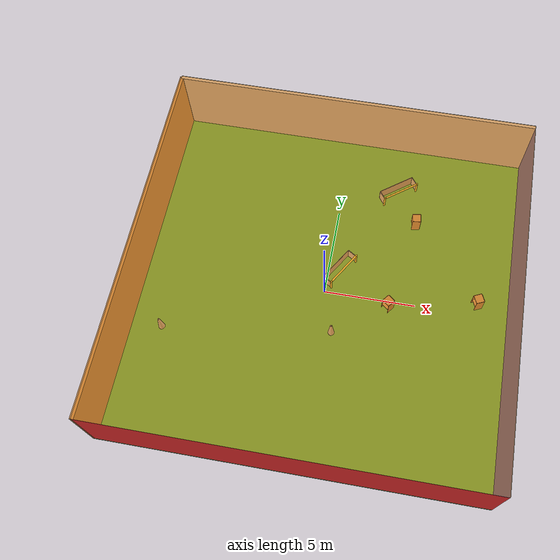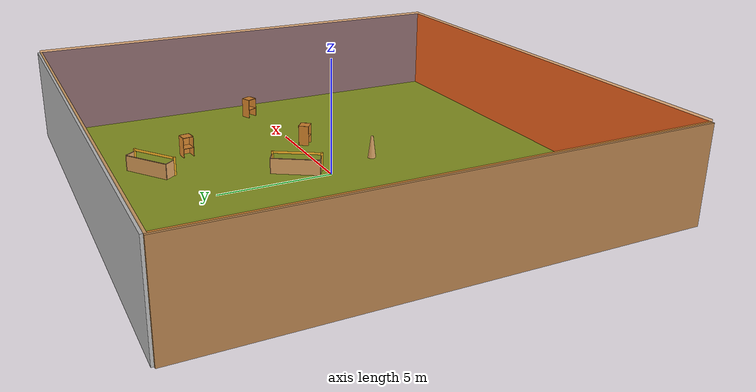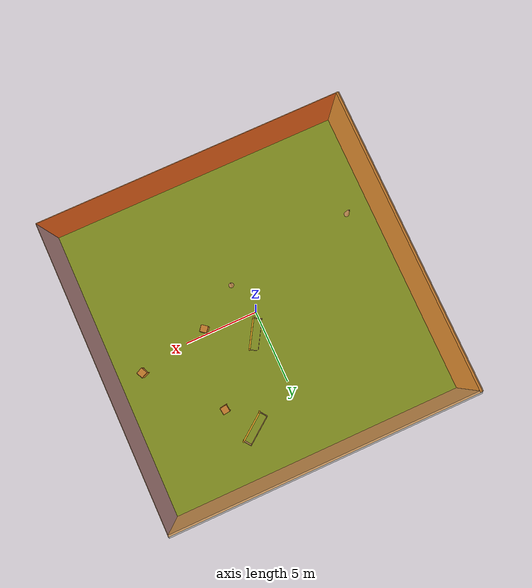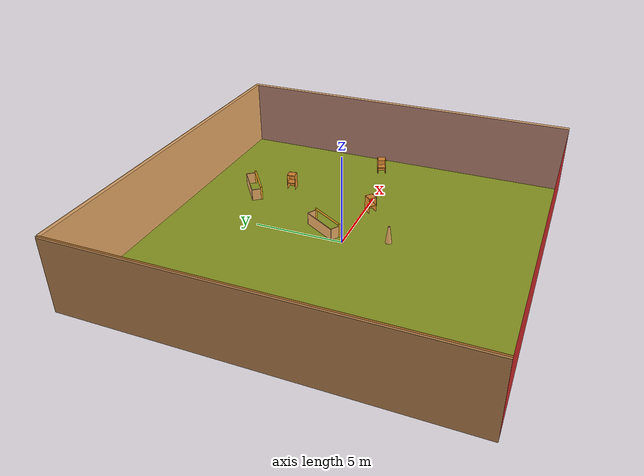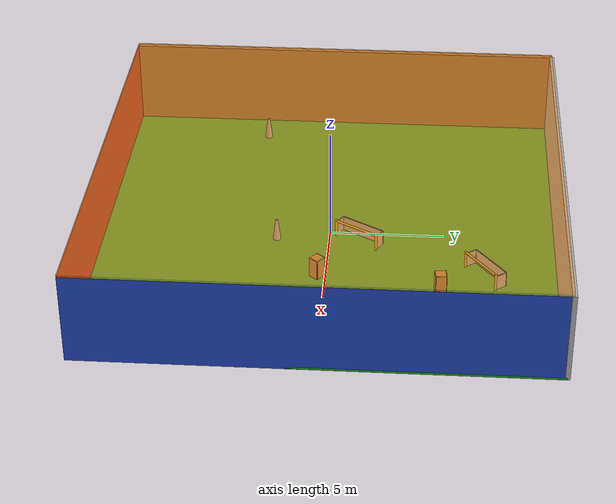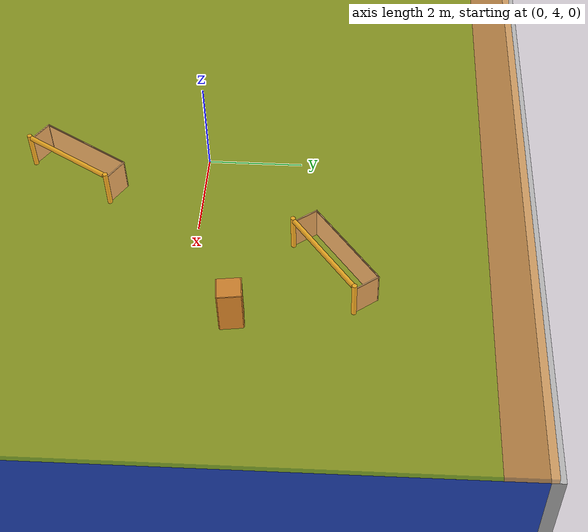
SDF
<sdf version="1.4">
 <world name="default">
  <physics type="ode">
   <max_step_size>0.001</max_step_size>
   <real_time_factor>1</real_time_factor>
   <real_time_update_rate>1000</real_time_update_rate>
   <gravity>0 0 -9.8</gravity>
  </physics>
  <scene><ambient>0.4 0.4 0.4 1</ambient><background>0.7 0.7 0.7 1</background><shadows>1</shadows></scene>
  <model name="Surrounding">
   <static>1</static>
   <link name="Ceiling">
    <collision name="Ceiling_Collision"><geometry><box><size>20 20 0.1</size></box></geometry></collision>
    <visual name="Ceiling_Visual">
     <geometry><box><size>20 20 0.1</size></box></geometry>
     <material>
      <script>
       <uri>file://media/materials/scripts/gazebo.material</uri>
       <name>Gazebo/OrangeTransparent</name>
      </script>
     </material>
    </visual>
    <pose>0 0 4.05 0 0 0</pose>
   </link>
   <link name="Wall_South">
    <collision name="Wall_South_Collision">
     <geometry><box><size>20 0 4</size></box></geometry>
     <pose>0 0 2 0 -0 0</pose>
    </collision>
    <visual name="Wall_South_Visual">
     <pose>0 0 2 0 -0 0</pose>
     <geometry><box><size>20 0 4</size></box></geometry>
     <material>
      <script><uri>file://media/materials/scripts/gazebo.material</uri><name>Gazebo/RedGlow</name></script>
     </material>
    </visual>
    <velocity_decay><linear>0</linear><angular>0</angular></velocity_decay>
    <pose>0 -10 0 0 -0 0</pose>
   </link>
   <link name="Wall_East">
    <collision name="Wall_21_Collision">
     <geometry><box><size>20 0 4</size></box></geometry>
     <pose>0 0 2 0 -0 0</pose>
    </collision>
    <visual name="Wall_21_Visual">
     <pose>0 0 2 0 -0 0</pose>
     <geometry><box><size>20 0 4</size></box></geometry>
     <material>
      <script><uri>file://media/materials/scripts/gazebo.material</uri><name>Gazebo/Blue</name></script>
     </material>
    </visual>
    <velocity_decay><linear>0</linear><angular>0</angular></velocity_decay>
    <pose>10 0 0 0 -0 1.5708</pose>
   </link>
   <link name="Wall_North">
    <collision name="Wall_22_Collision">
     <geometry><box><size>20 0.2 4</size></box></geometry>
     <pose>0 0 2 0 -0 0</pose>
    </collision>
    <visual name="Wall_22_Visual">
     <pose>0 0 2 0 -0 0</pose>
     <geometry><box><size>20 0.2 4</size></box></geometry>
     <material>
      <script><uri>file://media/materials/scripts/gazebo.material</uri><name>Gazebo/LightOff</name></script>
     </material>
    </visual>
    <velocity_decay><linear>0</linear><angular>0</angular></velocity_decay>
    <pose>0 10 0 0 -0 0</pose>
   </link>
   <link name="Wall_West">
    <collision name="Wall_23_Collision">
     <geometry><box><size>20 0.2 4</size></box></geometry>
     <pose>0 0 2 0 -0 0</pose>
    </collision>
    <visual name="Wall_23_Visual">
     <pose>0 0 2 0 -0 0</pose>
     <geometry><box><size>20 0.2 4</size></box></geometry>
     <material>
      <script><uri>file://media/materials/scripts/gazebo.material</uri><name>Gazebo/Wood</name></script>
     </material>
    </visual>
    <velocity_decay><linear>0</linear><angular>0</angular></velocity_decay>
    <pose>-10 0 0 0 0 -1.5708</pose>
   </link>
   <link name="Ground_link">
    <collision name="collision">
     <pose>0 0 .05 0 -0 0</pose>
     <geometry><box><size>20 20 0.1</size></box></geometry>
    </collision>
    <visual name="visual">
     <pose>0 0 .05 0 -0 0</pose>
     <geometry><box><size>20 20 0.1</size></box></geometry>
     <material>
      <script><uri>file://media/materials/scripts/gazebo.material</uri><name>Gazebo/GreenGlow</name></script>
     </material>
    </visual>
   </link>
   <static>1</static>
  </model>
  <spherical_coordinates>
   <surface_model>EARTH_WGS84</surface_model>
   <latitude_deg>0</latitude_deg>
   <longitude_deg>0</longitude_deg>
   <elevation>0</elevation>
   <heading_deg>0</heading_deg>
  </spherical_coordinates>
  <light name="lightball_0" type="diffuse">
   <diffuse>0.8 0.8 0.8 1</diffuse>
   <specular>0.2 0.2 0.2 1</specular>
   <attenuation>
    <range>100</range>
    <constant>0.7</constant>
    <linear>0.01</linear>
    <quadratic>0.001</quadratic>
   </attenuation>
   <direction>-0.5 0.1 -0.9</direction>
   <pose>8.88991918426 3.03257861595 3.53637196154 0 0 0</pose>
  </light>
  <light name="lightball_1" type="diffuse">
   <diffuse>0.8 0.8 0.8 1</diffuse>
   <specular>0.2 0.2 0.2 1</specular>
   <attenuation>
    <range>100</range>
    <constant>0.7</constant>
    <linear>0.01</linear>
    <quadratic>0.001</quadratic>
   </attenuation>
   <direction>-0.5 0.1 -0.9</direction>
   <pose>-6.90740024522 6.90905801118 3.00623893918 0 0 0</pose>
  </light>
  <light name="lightball_2" type="diffuse">
   <diffuse>0.8 0.8 0.8 1</diffuse>
   <specular>0.2 0.2 0.2 1</specular>
   <attenuation>
    <range>100</range>
    <constant>0.7</constant>
    <linear>0.01</linear>
    <quadratic>0.001</quadratic>
   </attenuation>
   <direction>-0.5 0.1 -0.9</direction>
   <pose>-1.18429977376 -0.0826399338767 2.81971096325 0 0 0</pose>
  </light>
  <light name="lightball_3" type="diffuse">
   <diffuse>0.8 0.8 0.8 1</diffuse>
   <specular>0.2 0.2 0.2 1</specular>
   <attenuation>
    <range>100</range>
    <constant>0.7</constant>
    <linear>0.01</linear>
    <quadratic>0.001</quadratic>
   </attenuation>
   <direction>-0.5 0.1 -0.9</direction>
   <pose>-4.92656283645 4.0494864251 0.856371780539 0 0 0</pose>
  </light>
  <light name="lightball_4" type="diffuse">
   <diffuse>0.8 0.8 0.8 1</diffuse>
   <specular>0.2 0.2 0.2 1</specular>
   <attenuation>
    <range>100</range>
    <constant>0.7</constant>
    <linear>0.01</linear>
    <quadratic>0.001</quadratic>
   </attenuation>
   <direction>-0.5 0.1 -0.9</direction>
   <pose>-2.49205966865 7.4801173845 2.07609068792 0 0 0</pose>
  </light>
  <light name="lightball_5" type="diffuse">
   <diffuse>0.8 0.8 0.8 1</diffuse>
   <specular>0.2 0.2 0.2 1</specular>
   <attenuation>
    <range>100</range>
    <constant>0.7</constant>
    <linear>0.01</linear>
    <quadratic>0.001</quadratic>
   </attenuation>
   <direction>-0.5 0.1 -0.9</direction>
   <pose>4.39040361711 -5.29174264391 1.95228970381 0 0 0</pose>
  </light>
  <light name="lightball_6" type="diffuse">
   <diffuse>0.8 0.8 0.8 1</diffuse>
   <specular>0.2 0.2 0.2 1</specular>
   <attenuation>
    <range>100</range>
    <constant>0.7</constant>
    <linear>0.01</linear>
    <quadratic>0.001</quadratic>
   </attenuation>
   <direction>-0.5 0.1 -0.9</direction>
   <pose>-4.29661118906 -7.45773416512 0.566711954263 0 0 0</pose>
  </light>
  <light name="lightball_7" type="diffuse">
   <diffuse>0.8 0.8 0.8 1</diffuse>
   <specular>0.2 0.2 0.2 1</specular>
   <attenuation>
    <range>100</range>
    <constant>0.7</constant>
    <linear>0.01</linear>
    <quadratic>0.001</quadratic>
   </attenuation>
   <direction>-0.5 0.1 -0.9</direction>
   <pose>8.09033555112 -4.86502423807 3.65472147524 0 0 0</pose>
  </light>
  <light name="lightball_8" type="diffuse">
   <diffuse>0.8 0.8 0.8 1</diffuse>
   <specular>0.2 0.2 0.2 1</specular>
   <attenuation>
    <range>100</range>
    <constant>0.7</constant>
    <linear>0.01</linear>
    <quadratic>0.001</quadratic>
   </attenuation>
   <direction>-0.5 0.1 -0.9</direction>
   <pose>7.04225786293 -9.34000790023 3.28317736251 0 0 0</pose>
  </light>
  <light name="lightball_9" type="diffuse">
   <diffuse>0.8 0.8 0.8 1</diffuse>
   <specular>0.2 0.2 0.2 1</specular>
   <attenuation>
    <range>100</range>
    <constant>0.7</constant>
    <linear>0.01</linear>
    <quadratic>0.001</quadratic>
   </attenuation>
   <direction>-0.5 0.1 -0.9</direction>
   <pose>0.521579553194 3.06230892378 3.0049728469 0 0 0</pose>
  </light>
  <light name="lightball_10" type="diffuse">
   <diffuse>0.8 0.8 0.8 1</diffuse>
   <specular>0.2 0.2 0.2 1</specular>
   <attenuation>
    <range>100</range>
    <constant>0.7</constant>
    <linear>0.01</linear>
    <quadratic>0.001</quadratic>
   </attenuation>
   <direction>-0.5 0.1 -0.9</direction>
   <pose>6.58098182717 -3.69729294042 2.94534794195 0 0 0</pose>
  </light>
  <light name="lightball_11" type="diffuse">
   <diffuse>0.8 0.8 0.8 1</diffuse>
   <specular>0.2 0.2 0.2 1</specular>
   <attenuation>
    <range>100</range>
    <constant>0.7</constant>
    <linear>0.01</linear>
    <quadratic>0.001</quadratic>
   </attenuation>
   <direction>-0.5 0.1 -0.9</direction>
   <pose>-5.42935465084 -2.95109455875 3.26873275662 0 0 0</pose>
  </light>
  <light name="lightball_12" type="diffuse">
   <diffuse>0.8 0.8 0.8 1</diffuse>
   <specular>0.2 0.2 0.2 1</specular>
   <attenuation>
    <range>100</range>
    <constant>0.7</constant>
    <linear>0.01</linear>
    <quadratic>0.001</quadratic>
   </attenuation>
   <direction>-0.5 0.1 -0.9</direction>
   <pose>3.62209469061 7.69848038232 2.14172364341 0 0 0</pose>
  </light>
  <include>
   <uri>model://construction_cone</uri>
   <pose>-8.26356597441 -3.54272022945 0 0 0 0.947201504154</pose>
  </include>
  <include>
   <uri>model://construction_cone</uri>
   <pose>0.762053094916 -2.323030676 0 0 0 1.19495083467</pose>
  </include>
  <include>
   <uri>model://robocup_3Dsim_goal</uri>
   <pose>0.866254875467 1.18137121706 0 0 0 2.59883965761</pose>
  </include>
  <include><uri>model://cabinet</uri><pose>3.53388823496 -0.351282148812 0 0 0 0.894743532469</pose></include>
  <include><uri>model://cabinet</uri><pose>4.39788669989 4.93116463826 0 0 0 0.127633334355</pose></include>
  <include>
   <uri>model://robocup_3Dsim_goal</uri>
   <pose>3.30247695781 6.6215033107 0 0 0 2.21339625537</pose>
  </include>
  <include><uri>model://cabinet</uri><pose>8.29017245025 0.605117746532 0 0 0 0.42681319189</pose></include>
 </world>
</sdf>

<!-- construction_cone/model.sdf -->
<sdf version="1.5">
  <model name="Construction Cone">
    <link name="link">
      <collision name="collision">
        <geometry>
          <mesh>
            <scale>10 10 10</scale>
            <uri>file://isr-testbed/construction_cone/meshes/construction_cone.dae</uri>
          </mesh>
        </geometry>
      </collision>
      <visual name="visual">
        <geometry>
          <mesh>
            <scale>10 10 10</scale>
            <uri>file://isr-testbed/construction_cone/meshes/construction_cone.dae</uri>
          </mesh>
        </geometry>
      </visual>
    </link>
  </model>
</sdf>

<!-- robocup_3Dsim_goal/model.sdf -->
<sdf version="1.5">
  <model name="robocup_3d_goal">
    <static>true</static>
    <link name="left_post">
      <pose>0 1.05 0.45 0 0 0</pose>
      <collision name="collision">
        <geometry>
          <cylinder>
            <radius>0.05</radius>
            <length>0.9</length>
          </cylinder>
        </geometry>
      </collision>
      <visual name="visual">
        <geometry>
          <cylinder>
            <radius>0.05</radius>
            <length>0.9</length>
          </cylinder>
        </geometry>
        <material>
          <script>
            <uri>file://media/materials/scripts/gazebo.material</uri>
            <name>Gazebo/ZincYellow</name>
          </script>
        </material>
      </visual>
    </link>
    <link name="left_support_horiz_lower">
      <pose>0.30 1.05 0.01 0 0 0</pose>
      <collision name="collision">
        <geometry>
          <box>
            <size>0.50 0.02 0.02</size>
          </box>
        </geometry>
      </collision>
      <visual name="visual">
        <geometry>
          <box>
            <size>0.50 0.02 0.02</size>
          </box>
        </geometry>
        <material>
          <script>
            <uri>file://media/materials/scripts/gazebo.material</uri>
            <name>Gazebo/White</name>
          </script>
        </material>
      </visual>
    </link>
    <link name="left_support_horiz_upper">
      <pose>0.30 1.05 0.79 0 0 0</pose>
      <collision name="collision">
        <geometry>
          <box>
            <size>0.50 0.02 0.02</size>
          </box>
        </geometry>
      </collision>
      <visual name="visual">
        <geometry>
          <box>
            <size>0.50 0.02 0.02</size>
          </box>
        </geometry>
        <material>
          <script>
            <uri>file://media/materials/scripts/gazebo.material</uri>
            <name>Gazebo/White</name>
          </script>
        </material>
      </visual>
    </link>
    <link name="left_support_vertical">
      <pose>0.56 1.05 0.4 0 1.5708 0</pose>
      <collision name="collision">
        <geometry>
          <box>
            <size>0.80 0.02 0.02</size>
          </box>
        </geometry>
      </collision>
      <visual name="visual">
        <geometry>
          <box>
            <size>0.80 0.02 0.02</size>
          </box>
        </geometry>
        <material>
          <script>
            <uri>file://media/materials/scripts/gazebo.material</uri>
            <name>Gazebo/White</name>
          </script>
        </material>
      </visual>
    </link>
    <link name="right_support_horiz_lower">
      <pose>0.30 -1.05 0.01 0 0 0</pose>
      <collision name="collision">
        <geometry>
          <box>
            <size>0.50 0.02 0.02</size>
          </box>
        </geometry>
      </collision>
      <visual name="visual">
        <geometry>
          <box>
            <size>0.50 0.02 0.02</size>
          </box>
        </geometry>
        <material>
          <script>
            <uri>file://media/materials/scripts/gazebo.material</uri>
            <name>Gazebo/White</name>
          </script>
        </material>
      </visual>
    </link>
    <link name="right_support_horiz_upper">
      <pose>0.30 -1.05 0.79 0 0 0</pose>
      <collision name="collision">
        <geometry>
          <box>
            <size>0.50 0.02 0.02</size>
          </box>
        </geometry>
      </collision>
      <visual name="visual">
        <geometry>
          <box>
            <size>0.50 0.02 0.02</size>
          </box>
        </geometry>
        <material>
          <script>
            <uri>file://media/materials/scripts/gazebo.material</uri>
            <name>Gazebo/White</name>
          </script>
        </material>
      </visual>
    </link>
    <link name="right_support_vertical">
      <pose>0.56 -1.05 0.4 0 1.5708 0</pose>
      <collision name="collision">
        <geometry>
          <box>
            <size>0.80 0.02 0.02</size>
          </box>
        </geometry>
      </collision>
      <visual name="visual">
        <geometry>
          <box>
            <size>0.80 0.02 0.02</size>
          </box>
        </geometry>
        <material>
          <script>
            <uri>file://media/materials/scripts/gazebo.material</uri>
            <name>Gazebo/White</name>
          </script>
        </material>
      </visual>
    </link>
    <link name="center_support_horiz_lower">
      <pose>0.56 0 0.01 0 1.5708 0</pose>
      <collision name="collision">
        <geometry>
          <box>
            <size>0.02 2.08 0.02</size>
          </box>
        </geometry>
      </collision>
      <visual name="visual">
        <geometry>
          <box>
            <size>0.02 2.08 0.02</size>
          </box>
        </geometry>
        <material>
          <script>
            <uri>file://media/materials/scripts/gazebo.material</uri>
            <name>Gazebo/White</name>
          </script>
        </material>
      </visual>
    </link>
    <link name="center_support_horiz_upper">
      <pose>0.56 0 0.79 0 1.5708 0</pose>
      <collision name="collision">
        <geometry>
          <box>
            <size>0.02 2.08 0.02</size>
          </box>
        </geometry>
      </collision>
      <visual name="visual">
        <geometry>
          <box>
            <size>0.02 2.08 0.02</size>
          </box>
        </geometry>
        <material>
          <script>
            <uri>file://media/materials/scripts/gazebo.material</uri>
            <name>Gazebo/White</name>
          </script>
        </material>
      </visual>
    </link>
    <link name="right_post">
      <pose>0 -1.05 0.45 0 0 0</pose>
      <collision name="collision">
        <geometry>
          <cylinder>
            <radius>0.05</radius>
            <length>0.9</length>
          </cylinder>
        </geometry>
      </collision>
      <visual name="visual">
        <geometry>
          <cylinder>
            <radius>0.05</radius>
            <length>0.9</length>
          </cylinder>
        </geometry>
        <material>
          <script>
            <uri>file://media/materials/scripts/gazebo.material</uri>
            <name>Gazebo/ZincYellow</name>
          </script>
        </material>
      </visual>
    </link>
    <link name="crossbar">
      <pose>0 0 0.85 1.57 1.57 0</pose>
      <collision name="collision">
        <geometry>
          <cylinder>
            <radius>0.05</radius>
            <length>2.0</length>
          </cylinder>
        </geometry>
      </collision>
      <visual name="visual">
        <geometry>
          <cylinder>
            <radius>0.05</radius>
            <length>2.0</length>
          </cylinder>
        </geometry>
        <material>
          <script>
            <uri>file://media/materials/scripts/gazebo.material</uri>
            <name>Gazebo/ZincYellow</name>
          </script>
        </material>
      </visual>
    </link>
    <link name="center_net">
      <pose>0.56 0 0.40 0 0 0</pose>
      <collision name="collision">
        <geometry>
          <box>
            <size>0.01 2.1 0.80</size>
          </box>
        </geometry>
      </collision>
      <visual name="visual">
        <geometry>
          <box>
            <size>0.01 2.1 0.80</size>
          </box>
        </geometry>
        <material>
          <script>
            <uri>model://../model_source/models/robocup09_spl_field/materials/scripts/</uri>
            <uri>model://../model_source/models/robocup09_spl_field/materials/textures/</uri>
            <name>RoboCup/Net</name>
          </script>
        </material>
      </visual>
    </link>
    <link name="left_net">
      <pose>0.30 1.05 0.40 0 0 0</pose>
      <collision name="collision">
        <geometry>
          <box>
            <size>0.50 0.01 0.76</size>
          </box>
        </geometry>
      </collision>
      <visual name="visual">
        <geometry>
          <box>
            <size>0.50 0.01 0.76</size>
          </box>
        </geometry>
        <material>
          <script>
            <uri>model://../model_source/models/robocup09_spl_field/materials/scripts/</uri>
            <uri>model://../model_source/models/robocup09_spl_field/materials/textures/</uri>
            <name>RoboCup/Net</name>
          </script>
        </material>
      </visual>
    </link>
    <link name="right_net">
      <pose>0.30 -1.05 0.40 0 0 0</pose>
      <collision name="collision">
        <geometry>
          <box>
            <size>0.50 0.01 0.76</size>
          </box>
        </geometry>
      </collision>
      <visual name="visual">
        <geometry>
          <box>
            <size>0.50 0.01 0.76</size>
          </box>
        </geometry>
        <material>
          <script>
            <uri>model://../model_source/models/robocup09_spl_field/materials/scripts/</uri>
            <uri>model://../model_source/models/robocup09_spl_field/materials/textures/</uri>
            <name>RoboCup/Net</name>
          </script>
        </material>
      </visual>
    </link>
  </model>
</sdf>

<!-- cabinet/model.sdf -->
<sdf version="1.5">
  <model name="cabinet">
    <static>true</static>
    <link name="cabinet_bottom_plate">
      <inertial>
        <pose>0 0 -1 0 0 0</pose>
        <inertia>
          <ixx>2.050000</ixx>
          <ixy>0</ixy>
          <ixz>0</ixz>
          <iyy>2.050000</iyy>
          <iyz>0</iyz>
          <izz>2.050000</izz>
        </inertia>
        <mass>25.000000</mass>
      </inertial>
      <collision name="cabinet_bottom_plate_geom">
        <pose>0 0 0.010000 0 0 0</pose>
        <geometry>
          <box>
            <size>0.450000 0.450000 0.020000</size>
          </box>
        </geometry>
      </collision>
      <visual name="cabinet_bottom_plate_geom_visual">
        <pose>0 0 0.010000 0 0 0</pose>
        <geometry>
          <box>
            <size>0.450000 0.450000 0.020000</size>
          </box>
        </geometry>
        <material>
          <script>
            <uri>model://media/materials/scripts/gazebo.material</uri>
            <name>Gazebo/Wood</name>
          </script>
        </material>
      </visual>
      <collision name="cabinet_bottom_plate_geom_cabinet_back_plate">
        <pose>0.235000 0 0.510000 0 0 0</pose>
        <geometry>
          <box>
            <size>0.020000 0.450000 1.020000</size>
          </box>
        </geometry>
      </collision>
      <visual name="cabinet_bottom_plate_geom_cabinet_back_plate_visual">
        <pose>0.235000 0 0.510000 0 0 0</pose>
        <geometry>
          <box>
            <size>0.020000 0.450000 1.020000</size>
          </box>
        </geometry>
        <material>
          <script>
            <uri>model://media/materials/scripts/gazebo.material</uri>
            <name>Gazebo/Wood</name>
          </script>
        </material>
      </visual>
      <collision name="cabinet_bottom_plate_geom_cabinet_left_plate">
        <pose>0 0.235000 0.510000 0 0 0</pose>
        <geometry>
          <box>
            <size>0.450000 0.020000 1.020000</size>
          </box>
        </geometry>
      </collision>
      <visual name="cabinet_bottom_plate_geom_cabinet_left_plate_visual">
        <pose>0 0.235000 0.510000 0 0 0</pose>
        <geometry>
          <box>
            <size>0.450000 0.020000 1.020000</size>
          </box>
        </geometry>
        <material>
          <script>
            <uri>model://media/materials/scripts/gazebo.material</uri>
            <name>Gazebo/Wood</name>
          </script>
        </material>
      </visual>
      <collision name="cabinet_bottom_plate_geom_cabinet_middle_plate">
        <pose>0 0 0.510000 0 0 0</pose>
        <geometry>
          <box>
            <size>0.450000 0.450000 0.020000</size>
          </box>
        </geometry>
      </collision>
      <visual name="cabinet_bottom_plate_geom_cabinet_middle_plate_visual">
        <pose>0 0 0.510000 0 0 0</pose>
        <geometry>
          <box>
            <size>0.450000 0.450000 0.020000</size>
          </box>
        </geometry>
        <material>
          <script>
            <uri>model://media/materials/scripts/gazebo.material</uri>
            <name>Gazebo/Wood</name>
          </script>
        </material>
      </visual>
      <collision name="cabinet_bottom_plate_geom_cabinet_right_plate">
        <pose>0 -0.235000 0.510000 0 0 0</pose>
        <geometry>
          <box>
            <size>0.450000 0.020000 1.020000</size>
          </box>
        </geometry>
      </collision>
      <visual name="cabinet_bottom_plate_geom_cabinet_right_plate_visual">
        <pose>0 -0.235000 0.510000 0 0 0</pose>
        <geometry>
          <box>
            <size>0.450000 0.020000 1.020000</size>
          </box>
        </geometry>
        <material>
          <script>
            <uri>model://media/materials/scripts/gazebo.material</uri>
            <name>Gazebo/Wood</name>
          </script>
        </material>
      </visual>
      <collision name="cabinet_bottom_plate_geom_cabinet_top_plate">
        <pose>0 0 1.010000 0 0 0</pose>
        <geometry>
          <box>
            <size>0.450000 0.450000 0.020000</size>
          </box>
        </geometry>
      </collision>
      <visual name="cabinet_bottom_plate_geom_cabinet_top_plate_visual">
        <pose>0 0 1.010000 0 0 0</pose>
        <geometry>
          <box>
            <size>0.450000 0.450000 0.020000</size>
          </box>
        </geometry>
        <material>
          <script>
            <uri>model://media/materials/scripts/gazebo.material</uri>
            <name>Gazebo/Wood</name>
          </script>
        </material>
      </visual>
    </link>
  </model>
</sdf>
